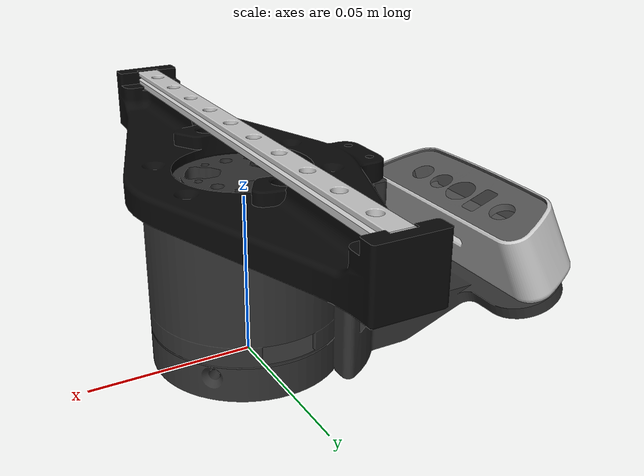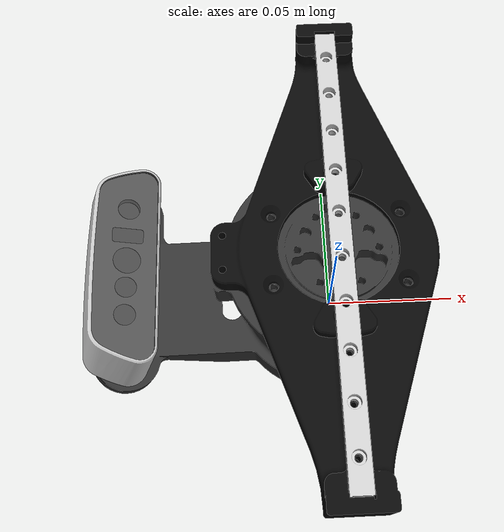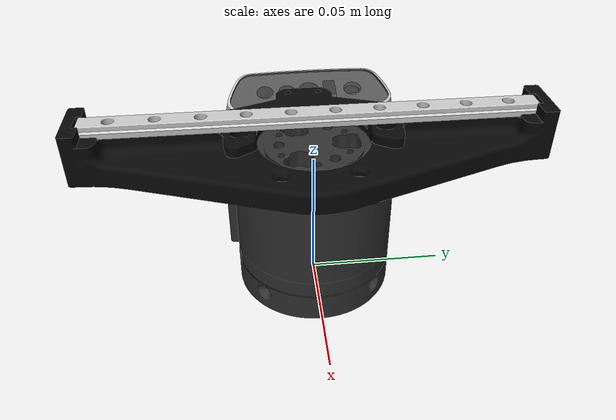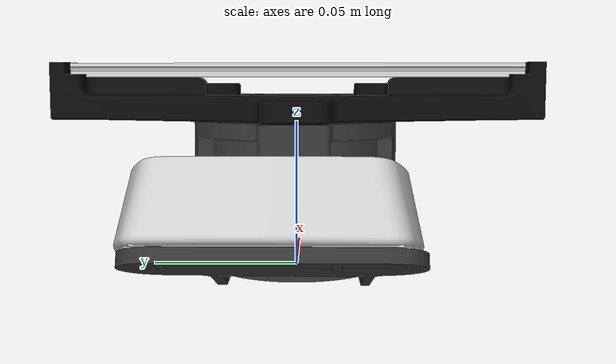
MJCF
<mujoco model="link6">
  <default>
    <default class="visual">
      <geom group="2" type="mesh" contype="0" conaffinity="0"/>
    </default>
    <default class="collision">
      <geom group="3" type="mesh"/>
    </default>
  </default>
  <asset>
    <material name="Material-塑胶__1_.046" specular="0.0" shininess="0.25" rgba="0.784314 0.784314 0.784314 1.000000"/>
    <material name="Material-塑胶__1_.047" specular="0.0" shininess="0.25" rgba="0.784314 0.784314 0.784314 1.000000"/>
    <material name="Material-塑胶__2_.024" specular="0.0" shininess="0.25" rgba="0.203922 0.203922 0.203922 0.788820"/>
    <material name="Material-塑胶__2_.025" specular="0.0" shininess="0.25" rgba="0.203922 0.203922 0.203922 0.788820"/>
    <material name="a0000000-0000-0000-0000-000000000000.013" specular="0.0" shininess="0.25" rgba="0.980392 0.980392 0.980392 1.000000"/>
    <material name="black_metal.013" specular="0.5" shininess="0.09604875199999999" rgba="0.030034 0.030034 0.030034 1.000000"/>
    <material name="grey_metal.009" specular="0.5" shininess="0.09604875199999999" rgba="0.191349 0.191349 0.191349 1.000000"/>
    <mesh file="link6_0.obj"/>
    <mesh file="link6_1.obj"/>
    <mesh file="link6_2.obj"/>
    <mesh file="link6_3.obj"/>
    <mesh file="link6_4.obj"/>
    <mesh file="link6_5.obj"/>
    <mesh file="link6_6.obj"/>
    <mesh file="link6_collision_0.obj"/>
    <mesh file="link6_collision_1.obj"/>
    <mesh file="link6_collision_2.obj"/>
  </asset>
  <worldbody>
    <body name="link6">
      <geom mesh="link6_0" material="black_metal.013" class="visual"/>
      <geom mesh="link6_1" material="Material-塑胶__1_.047" class="visual"/>
      <geom mesh="link6_2" material="Material-塑胶__1_.046" class="visual"/>
      <geom mesh="link6_3" material="Material-塑胶__2_.025" class="visual"/>
      <geom mesh="link6_4" material="a0000000-0000-0000-0000-000000000000.013" class="visual"/>
      <geom mesh="link6_5" material="Material-塑胶__2_.024" class="visual"/>
      <geom mesh="link6_6" material="grey_metal.009" class="visual"/>
      <geom mesh="link6_collision_0" rgba="0.023637853901089634 0.6935192607501613 0.08467234856750083 1" class="collision"/>
      <geom mesh="link6_collision_1" rgba="0.8377848488639095 0.2665021788972627 0.8610250097224006 1" class="collision"/>
      <geom mesh="link6_collision_2" rgba="0.016876128284362024 0.17228118591530106 0.3712269414162721 1" class="collision"/>
    </body>
  </worldbody>
</mujoco>
